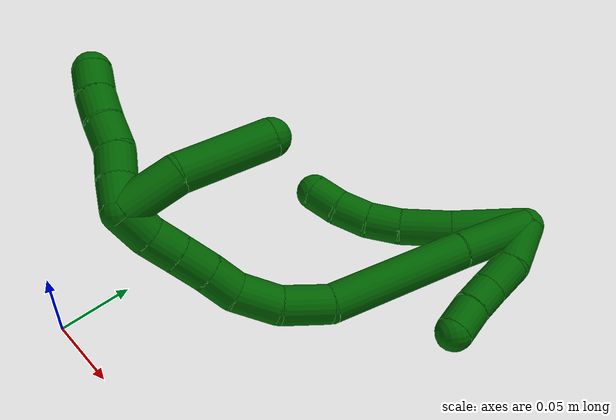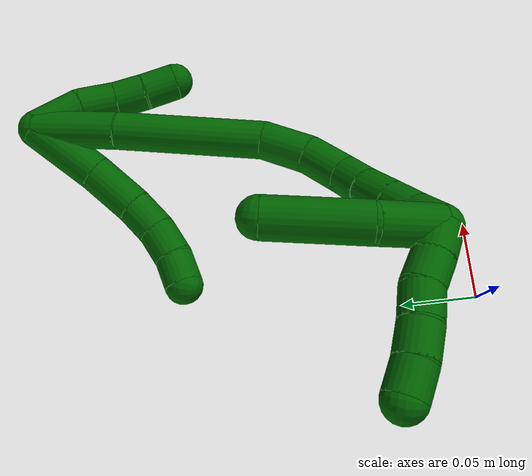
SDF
<sdf version="1.7">
 <world name="default">
  <model name="6">
   <static>0</static>
   <link name="6">
    <collision name="collision-cylinder-e_1_2_8">
     <pose>-0.008685 0.007774 -0.02191 -2.80063 -0.357509 1.61915</pose>
     <geometry><cylinder><radius>0.0125</radius><length>0.049634</length></cylinder></geometry>
     <surface>
      <friction><ode><mu>1.16</mu><mu2>1.16</mu2><slip1>0</slip1><slip2>0</slip2></ode></friction>
      <contact><ode><kp>1e+06</kp><kd>1</kd><max_vel>0</max_vel><min_depth>0.001</min_depth></ode></contact>
     </surface>
    </collision>
    <visual name="visual-cylinder-e_1_2_8">
     <pose>-0.008685 0.007774 -0.02191 -2.80063 -0.357509 1.61915</pose>
     <geometry><cylinder><radius>0.0125</radius><length>0.049634</length></cylinder></geometry>
     <material><ambient>0 0.392157 0.003922 1</ambient></material>
    </visual>
    <collision name="collision-cylinder-e_2_8_9">
     <pose>-0.024811 0.020581 -0.058757 -2.81657 -0.441067 1.87866</pose>
     <geometry><cylinder><radius>0.0125</radius><length>0.034862</length></cylinder></geometry>
     <surface>
      <friction><ode><mu>1.16</mu><mu2>1.16</mu2><slip1>0</slip1><slip2>0</slip2></ode></friction>
      <contact><ode><kp>1e+06</kp><kd>1</kd><max_vel>0</max_vel><min_depth>0.001</min_depth></ode></contact>
     </surface>
    </collision>
    <visual name="visual-cylinder-e_2_8_9">
     <pose>-0.024811 0.020581 -0.058757 -2.81657 -0.441067 1.87866</pose>
     <geometry><cylinder><radius>0.0125</radius><length>0.034862</length></cylinder></geometry>
     <material><ambient>0 0.392157 0.003922 1</ambient></material>
    </visual>
    <collision name="collision-cylinder-e_3_9_10">
     <pose>-0.038524 0.028001 -0.082961 -2.88955 -0.58025 2.33892</pose>
     <geometry><cylinder><radius>0.0125</radius><length>0.022883</length></cylinder></geometry>
     <surface>
      <friction><ode><mu>1.16</mu><mu2>1.16</mu2><slip1>0</slip1><slip2>0</slip2></ode></friction>
      <contact><ode><kp>1e+06</kp><kd>1</kd><max_vel>0</max_vel><min_depth>0.001</min_depth></ode></contact>
     </surface>
    </collision>
    <visual name="visual-cylinder-e_3_9_10">
     <pose>-0.038524 0.028001 -0.082961 -2.88955 -0.58025 2.33892</pose>
     <geometry><cylinder><radius>0.0125</radius><length>0.022883</length></cylinder></geometry>
     <material><ambient>0 0.392157 0.003922 1</ambient></material>
    </visual>
    <collision name="collision-cylinder-e_4_10_11">
     <pose>-0.052683 0.031899 -0.099905 -2.9472 -0.789306 2.68168</pose>
     <geometry><cylinder><radius>0.0125</radius><length>0.02222</length></cylinder></geometry>
     <surface>
      <friction><ode><mu>1.16</mu><mu2>1.16</mu2><slip1>0</slip1><slip2>0</slip2></ode></friction>
      <contact><ode><kp>1e+06</kp><kd>1</kd><max_vel>0</max_vel><min_depth>0.001</min_depth></ode></contact>
     </surface>
    </collision>
    <visual name="visual-cylinder-e_4_10_11">
     <pose>-0.052683 0.031899 -0.099905 -2.9472 -0.789306 2.68168</pose>
     <geometry><cylinder><radius>0.0125</radius><length>0.02222</length></cylinder></geometry>
     <material><ambient>0 0.392157 0.003922 1</ambient></material>
    </visual>
    <collision name="collision-cylinder-e_5_11_6">
     <pose>-0.069045 0.034877 -0.113068 -2.88042 -0.980528 2.65903</pose>
     <geometry><cylinder><radius>0.0125</radius><length>0.020401</length></cylinder></geometry>
     <surface>
      <friction><ode><mu>1.16</mu><mu2>1.16</mu2><slip1>0</slip1><slip2>0</slip2></ode></friction>
      <contact><ode><kp>1e+06</kp><kd>1</kd><max_vel>0</max_vel><min_depth>0.001</min_depth></ode></contact>
     </surface>
    </collision>
    <visual name="visual-cylinder-e_5_11_6">
     <pose>-0.069045 0.034877 -0.113068 -2.88042 -0.980528 2.65903</pose>
     <geometry><cylinder><radius>0.0125</radius><length>0.020401</length></cylinder></geometry>
     <material><ambient>0 0.392157 0.003922 1</ambient></material>
    </visual>
    <collision name="collision-cylinder-e_1_2_12">
     <pose>0.012014 0.000422 -0.011405 -3.1046 0.811027 -3.05547</pose>
     <geometry><cylinder><radius>0.0125</radius><length>0.033142</length></cylinder></geometry>
     <surface>
      <friction><ode><mu>1.16</mu><mu2>1.16</mu2><slip1>0</slip1><slip2>0</slip2></ode></friction>
      <contact><ode><kp>1e+06</kp><kd>1</kd><max_vel>0</max_vel><min_depth>0.001</min_depth></ode></contact>
     </surface>
    </collision>
    <visual name="visual-cylinder-e_1_2_12">
     <pose>0.012014 0.000422 -0.011405 -3.1046 0.811027 -3.05547</pose>
     <geometry><cylinder><radius>0.0125</radius><length>0.033142</length></cylinder></geometry>
     <material><ambient>0 0.392157 0.003922 1</ambient></material>
    </visual>
    <collision name="collision-cylinder-e_2_12_13">
     <pose>0.029585 0.001667 -0.03389 -3.06747 0.463869 -2.83016</pose>
     <geometry><cylinder><radius>0.0125</radius><length>0.024844</length></cylinder></geometry>
     <surface>
      <friction><ode><mu>1.16</mu><mu2>1.16</mu2><slip1>0</slip1><slip2>0</slip2></ode></friction>
      <contact><ode><kp>1e+06</kp><kd>1</kd><max_vel>0</max_vel><min_depth>0.001</min_depth></ode></contact>
     </surface>
    </collision>
    <visual name="visual-cylinder-e_2_12_13">
     <pose>0.029585 0.001667 -0.03389 -3.06747 0.463869 -2.83016</pose>
     <geometry><cylinder><radius>0.0125</radius><length>0.024844</length></cylinder></geometry>
     <material><ambient>0 0.392157 0.003922 1</ambient></material>
    </visual>
    <collision name="collision-cylinder-e_3_13_14">
     <pose>0.039932 0.001898 -0.053921 3.07561 0.490301 2.87929</pose>
     <geometry><cylinder><radius>0.0125</radius><length>0.020338</length></cylinder></geometry>
     <surface>
      <friction><ode><mu>1.16</mu><mu2>1.16</mu2><slip1>0</slip1><slip2>0</slip2></ode></friction>
      <contact><ode><kp>1e+06</kp><kd>1</kd><max_vel>0</max_vel><min_depth>0.001</min_depth></ode></contact>
     </surface>
    </collision>
    <visual name="visual-cylinder-e_3_13_14">
     <pose>0.039932 0.001898 -0.053921 3.07561 0.490301 2.87929</pose>
     <geometry><cylinder><radius>0.0125</radius><length>0.020338</length></cylinder></geometry>
     <material><ambient>0 0.392157 0.003922 1</ambient></material>
    </visual>
    <collision name="collision-cylinder-e_4_14_5">
     <pose>0.050724 0.001126 -0.071893 3.12155 0.587141 3.07532</pose>
     <geometry><cylinder><radius>0.0125</radius><length>0.021676</length></cylinder></geometry>
     <surface>
      <friction><ode><mu>1.16</mu><mu2>1.16</mu2><slip1>0</slip1><slip2>0</slip2></ode></friction>
      <contact><ode><kp>1e+06</kp><kd>1</kd><max_vel>0</max_vel><min_depth>0.001</min_depth></ode></contact>
     </surface>
    </collision>
    <visual name="visual-cylinder-e_4_14_5">
     <pose>0.050724 0.001126 -0.071893 3.12155 0.587141 3.07532</pose>
     <geometry><cylinder><radius>0.0125</radius><length>0.021676</length></cylinder></geometry>
     <material><ambient>0 0.392157 0.003922 1</ambient></material>
    </visual>
    <collision name="collision-cylinder-e_1_2_15">
     <pose>0.003134 -0.001431 -0.02753 3.08968 0.113193 2.28221</pose>
     <geometry><cylinder><radius>0.0125</radius><length>0.05549</length></cylinder></geometry>
     <surface>
      <friction><ode><mu>1.16</mu><mu2>1.16</mu2><slip1>0</slip1><slip2>0</slip2></ode></friction>
      <contact><ode><kp>1e+06</kp><kd>1</kd><max_vel>0</max_vel><min_depth>0.001</min_depth></ode></contact>
     </surface>
    </collision>
    <visual name="visual-cylinder-e_1_2_15">
     <pose>0.003134 -0.001431 -0.02753 3.08968 0.113193 2.28221</pose>
     <geometry><cylinder><radius>0.0125</radius><length>0.05549</length></cylinder></geometry>
     <material><ambient>0 0.392157 0.003922 1</ambient></material>
    </visual>
    <collision name="collision-cylinder-e_2_15_16">
     <pose>0.012125 -0.001526 -0.103379 -3.11398 0.120584 -2.69183</pose>
     <geometry><cylinder><radius>0.0125</radius><length>0.097381</length></cylinder></geometry>
     <surface>
      <friction><ode><mu>1.16</mu><mu2>1.16</mu2><slip1>0</slip1><slip2>0</slip2></ode></friction>
      <contact><ode><kp>1e+06</kp><kd>1</kd><max_vel>0</max_vel><min_depth>0.001</min_depth></ode></contact>
     </surface>
    </collision>
    <visual name="visual-cylinder-e_2_15_16">
     <pose>0.012125 -0.001526 -0.103379 -3.11398 0.120584 -2.69183</pose>
     <geometry><cylinder><radius>0.0125</radius><length>0.097381</length></cylinder></geometry>
     <material><ambient>0 0.392157 0.003922 1</ambient></material>
    </visual>
    <collision name="collision-cylinder-e_3_16_17">
     <pose>0.014435 -0.000911 -0.167539 3.09621 -0.22006 -2.73635</pose>
     <geometry><cylinder><radius>0.0125</radius><length>0.032499</length></cylinder></geometry>
     <surface>
      <friction><ode><mu>1.16</mu><mu2>1.16</mu2><slip1>0</slip1><slip2>0</slip2></ode></friction>
      <contact><ode><kp>1e+06</kp><kd>1</kd><max_vel>0</max_vel><min_depth>0.001</min_depth></ode></contact>
     </surface>
    </collision>
    <visual name="visual-cylinder-e_3_16_17">
     <pose>0.014435 -0.000911 -0.167539 3.09621 -0.22006 -2.73635</pose>
     <geometry><cylinder><radius>0.0125</radius><length>0.032499</length></cylinder></geometry>
     <material><ambient>0 0.392157 0.003922 1</ambient></material>
    </visual>
    <collision name="collision-cylinder-e_4_17_18">
     <pose>0.003713 -0.00388 -0.195785 2.9622 -0.517382 -2.48634</pose>
     <geometry><cylinder><radius>0.0125</radius><length>0.029011</length></cylinder></geometry>
     <surface>
      <friction><ode><mu>1.16</mu><mu2>1.16</mu2><slip1>0</slip1><slip2>0</slip2></ode></friction>
      <contact><ode><kp>1e+06</kp><kd>1</kd><max_vel>0</max_vel><min_depth>0.001</min_depth></ode></contact>
     </surface>
    </collision>
    <visual name="visual-cylinder-e_4_17_18">
     <pose>0.003713 -0.00388 -0.195785 2.9622 -0.517382 -2.48634</pose>
     <geometry><cylinder><radius>0.0125</radius><length>0.029011</length></cylinder></geometry>
     <material><ambient>0 0.392157 0.003922 1</ambient></material>
    </visual>
    <collision name="collision-cylinder-e_5_18_19">
     <pose>-0.009942 -0.010634 -0.215388 2.58249 -0.651886 -1.73339</pose>
     <geometry><cylinder><radius>0.0125</radius><length>0.021363</length></cylinder></geometry>
     <surface>
      <friction><ode><mu>1.16</mu><mu2>1.16</mu2><slip1>0</slip1><slip2>0</slip2></ode></friction>
      <contact><ode><kp>1e+06</kp><kd>1</kd><max_vel>0</max_vel><min_depth>0.001</min_depth></ode></contact>
     </surface>
    </collision>
    <visual name="visual-cylinder-e_5_18_19">
     <pose>-0.009942 -0.010634 -0.215388 2.58249 -0.651886 -1.73339</pose>
     <geometry><cylinder><radius>0.0125</radius><length>0.021363</length></cylinder></geometry>
     <material><ambient>0 0.392157 0.003922 1</ambient></material>
    </visual>
    <collision name="collision-cylinder-e_6_19_20">
     <pose>-0.022559 -0.01983 -0.230484 2.60546 -0.588933 -1.66971</pose>
     <geometry><cylinder><radius>0.0125</radius><length>0.022096</length></cylinder></geometry>
     <surface>
      <friction><ode><mu>1.16</mu><mu2>1.16</mu2><slip1>0</slip1><slip2>0</slip2></ode></friction>
      <contact><ode><kp>1e+06</kp><kd>1</kd><max_vel>0</max_vel><min_depth>0.001</min_depth></ode></contact>
     </surface>
    </collision>
    <visual name="visual-cylinder-e_6_19_20">
     <pose>-0.022559 -0.01983 -0.230484 2.60546 -0.588933 -1.66971</pose>
     <geometry><cylinder><radius>0.0125</radius><length>0.022096</length></cylinder></geometry>
     <material><ambient>0 0.392157 0.003922 1</ambient></material>
    </visual>
    <collision name="collision-cylinder-e_7_20_21">
     <pose>-0.034428 -0.028722 -0.245795 2.62616 -0.592229 -1.71653</pose>
     <geometry><cylinder><radius>0.0125</radius><length>0.020537</length></cylinder></geometry>
     <surface>
      <friction><ode><mu>1.16</mu><mu2>1.16</mu2><slip1>0</slip1><slip2>0</slip2></ode></friction>
      <contact><ode><kp>1e+06</kp><kd>1</kd><max_vel>0</max_vel><min_depth>0.001</min_depth></ode></contact>
     </surface>
    </collision>
    <visual name="visual-cylinder-e_7_20_21">
     <pose>-0.034428 -0.028722 -0.245795 2.62616 -0.592229 -1.71653</pose>
     <geometry><cylinder><radius>0.0125</radius><length>0.020537</length></cylinder></geometry>
     <material><ambient>0 0.392157 0.003922 1</ambient></material>
    </visual>
    <collision name="collision-cylinder-e_8_21_1">
     <pose>-0.046437 -0.039048 -0.259529 2.37189 -0.619428 -1.3373</pose>
     <geometry><cylinder><radius>0.0125</radius><length>0.021622</length></cylinder></geometry>
     <surface>
      <friction><ode><mu>1.16</mu><mu2>1.16</mu2><slip1>0</slip1><slip2>0</slip2></ode></friction>
      <contact><ode><kp>1e+06</kp><kd>1</kd><max_vel>0</max_vel><min_depth>0.001</min_depth></ode></contact>
     </surface>
    </collision>
    <visual name="visual-cylinder-e_8_21_1">
     <pose>-0.046437 -0.039048 -0.259529 2.37189 -0.619428 -1.3373</pose>
     <geometry><cylinder><radius>0.0125</radius><length>0.021622</length></cylinder></geometry>
     <material><ambient>0 0.392157 0.003922 1</ambient></material>
    </visual>
    <collision name="collision-cylinder-e_1_1_22">
     <pose>-0.062618 -0.045304 -0.264478 0.094576 -1.43244 -0.082335</pose>
     <geometry><cylinder><radius>0.0125</radius><length>0.02</length></cylinder></geometry>
     <surface>
      <friction><ode><mu>1.16</mu><mu2>1.16</mu2><slip1>0</slip1><slip2>0</slip2></ode></friction>
      <contact><ode><kp>1e+06</kp><kd>1</kd><max_vel>0</max_vel><min_depth>0.001</min_depth></ode></contact>
     </surface>
    </collision>
    <visual name="visual-cylinder-e_1_1_22">
     <pose>-0.062618 -0.045304 -0.264478 0.094576 -1.43244 -0.082335</pose>
     <geometry><cylinder><radius>0.0125</radius><length>0.02</length></cylinder></geometry>
     <material><ambient>0 0.392157 0.003922 1</ambient></material>
    </visual>
    <collision name="collision-cylinder-e_2_22_23">
     <pose>-0.082287 -0.046123 -0.261065 0.325725 -1.35375 -0.262543</pose>
     <geometry><cylinder><radius>0.0125</radius><length>0.02</length></cylinder></geometry>
     <surface>
      <friction><ode><mu>1.16</mu><mu2>1.16</mu2><slip1>0</slip1><slip2>0</slip2></ode></friction>
      <contact><ode><kp>1e+06</kp><kd>1</kd><max_vel>0</max_vel><min_depth>0.001</min_depth></ode></contact>
     </surface>
    </collision>
    <visual name="visual-cylinder-e_2_22_23">
     <pose>-0.082287 -0.046123 -0.261065 0.325725 -1.35375 -0.262543</pose>
     <geometry><cylinder><radius>0.0125</radius><length>0.02</length></cylinder></geometry>
     <material><ambient>0 0.392157 0.003922 1</ambient></material>
    </visual>
    <collision name="collision-cylinder-e_3_23_24">
     <pose>-0.102019 -0.047237 -0.259728 2.59847 -1.48851 -2.55437</pose>
     <geometry><cylinder><radius>0.0125</radius><length>0.02</length></cylinder></geometry>
     <surface>
      <friction><ode><mu>1.16</mu><mu2>1.16</mu2><slip1>0</slip1><slip2>0</slip2></ode></friction>
      <contact><ode><kp>1e+06</kp><kd>1</kd><max_vel>0</max_vel><min_depth>0.001</min_depth></ode></contact>
     </surface>
    </collision>
    <visual name="visual-cylinder-e_3_23_24">
     <pose>-0.102019 -0.047237 -0.259728 2.59847 -1.48851 -2.55437</pose>
     <geometry><cylinder><radius>0.0125</radius><length>0.02</length></cylinder></geometry>
     <material><ambient>0 0.392157 0.003922 1</ambient></material>
    </visual>
    <collision name="collision-cylinder-e_4_24_25">
     <pose>-0.121954 -0.046903 -0.260241 -1.32444 -1.49249 1.24921</pose>
     <geometry><cylinder><radius>0.0125</radius><length>0.02</length></cylinder></geometry>
     <surface>
      <friction><ode><mu>1.16</mu><mu2>1.16</mu2><slip1>0</slip1><slip2>0</slip2></ode></friction>
      <contact><ode><kp>1e+06</kp><kd>1</kd><max_vel>0</max_vel><min_depth>0.001</min_depth></ode></contact>
     </surface>
    </collision>
    <visual name="visual-cylinder-e_4_24_25">
     <pose>-0.121954 -0.046903 -0.260241 -1.32444 -1.49249 1.24921</pose>
     <geometry><cylinder><radius>0.0125</radius><length>0.02</length></cylinder></geometry>
     <material><ambient>0 0.392157 0.003922 1</ambient></material>
    </visual>
    <collision name="collision-cylinder-e_5_25_4">
     <pose>-0.141765 -0.045046 -0.258653 -0.666202 -1.39213 0.562868</pose>
     <geometry><cylinder><radius>0.0125</radius><length>0.02</length></cylinder></geometry>
     <surface>
      <friction><ode><mu>1.16</mu><mu2>1.16</mu2><slip1>0</slip1><slip2>0</slip2></ode></friction>
      <contact><ode><kp>1e+06</kp><kd>1</kd><max_vel>0</max_vel><min_depth>0.001</min_depth></ode></contact>
     </surface>
    </collision>
    <visual name="visual-cylinder-e_5_25_4">
     <pose>-0.141765 -0.045046 -0.258653 -0.666202 -1.39213 0.562868</pose>
     <geometry><cylinder><radius>0.0125</radius><length>0.02</length></cylinder></geometry>
     <material><ambient>0 0.392157 0.003922 1</ambient></material>
    </visual>
    <collision name="collision-cylinder-e_1_1_26">
     <pose>-0.058128 -0.050235 -0.247947 0.275487 -0.283223 -0.03952</pose>
     <geometry><cylinder><radius>0.0125</radius><length>0.038755</length></cylinder></geometry>
     <surface>
      <friction><ode><mu>1.16</mu><mu2>1.16</mu2><slip1>0</slip1><slip2>0</slip2></ode></friction>
      <contact><ode><kp>1e+06</kp><kd>1</kd><max_vel>0</max_vel><min_depth>0.001</min_depth></ode></contact>
     </surface>
    </collision>
    <visual name="visual-cylinder-e_1_1_26">
     <pose>-0.058128 -0.050235 -0.247947 0.275487 -0.283223 -0.03952</pose>
     <geometry><cylinder><radius>0.0125</radius><length>0.038755</length></cylinder></geometry>
     <material><ambient>0 0.392157 0.003922 1</ambient></material>
    </visual>
    <collision name="collision-cylinder-e_2_26_3">
     <pose>-0.068382 -0.056641 -0.199835 0.044503 -0.158662 -0.003538</pose>
     <geometry><cylinder><radius>0.0125</radius><length>0.061245</length></cylinder></geometry>
     <surface>
      <friction><ode><mu>1.16</mu><mu2>1.16</mu2><slip1>0</slip1><slip2>0</slip2></ode></friction>
      <contact><ode><kp>1e+06</kp><kd>1</kd><max_vel>0</max_vel><min_depth>0.001</min_depth></ode></contact>
     </surface>
    </collision>
    <visual name="visual-cylinder-e_2_26_3">
     <pose>-0.068382 -0.056641 -0.199835 0.044503 -0.158662 -0.003538</pose>
     <geometry><cylinder><radius>0.0125</radius><length>0.061245</length></cylinder></geometry>
     <material><ambient>0 0.392157 0.003922 1</ambient></material>
    </visual>
    <collision name="collision-sphere-3">
     <pose>-0.07322 -0.057986 -0.169627 0 -0 0</pose>
     <geometry><sphere><radius>0.0125</radius></sphere></geometry>
     <surface>
      <friction><ode><mu>1.16</mu><mu2>1.16</mu2><slip1>0</slip1><slip2>0</slip2></ode></friction>
      <contact><ode><kp>1e+06</kp><kd>1</kd><max_vel>0</max_vel><min_depth>0.001</min_depth></ode></contact>
     </surface>
    </collision>
    <visual name="visual-sphere-3">
     <pose>-0.07322 -0.057986 -0.169627 0 -0 0</pose>
     <geometry><sphere><radius>0.0125</radius></sphere></geometry>
     <material><ambient>0 0.392157 0.003922 1</ambient></material>
    </visual>
    <collision name="collision-sphere-26">
     <pose>-0.063543 -0.055295 -0.230043 0 -0 0</pose>
     <geometry><sphere><radius>0.0125</radius></sphere></geometry>
     <surface>
      <friction><ode><mu>1.16</mu><mu2>1.16</mu2><slip1>0</slip1><slip2>0</slip2></ode></friction>
      <contact><ode><kp>1e+06</kp><kd>1</kd><max_vel>0</max_vel><min_depth>0.001</min_depth></ode></contact>
     </surface>
    </collision>
    <visual name="visual-sphere-26">
     <pose>-0.063543 -0.055295 -0.230043 0 -0 0</pose>
     <geometry><sphere><radius>0.0125</radius></sphere></geometry>
     <material><ambient>0 0.392157 0.003922 1</ambient></material>
    </visual>
    <collision name="collision-sphere-4">
     <pose>-0.151605 -0.043948 -0.257256 0 -0 0</pose>
     <geometry><sphere><radius>0.0125</radius></sphere></geometry>
     <surface>
      <friction><ode><mu>1.16</mu><mu2>1.16</mu2><slip1>0</slip1><slip2>0</slip2></ode></friction>
      <contact><ode><kp>1e+06</kp><kd>1</kd><max_vel>0</max_vel><min_depth>0.001</min_depth></ode></contact>
     </surface>
    </collision>
    <visual name="visual-sphere-4">
     <pose>-0.151605 -0.043948 -0.257256 0 -0 0</pose>
     <geometry><sphere><radius>0.0125</radius></sphere></geometry>
     <material><ambient>0 0.392157 0.003922 1</ambient></material>
    </visual>
    <collision name="collision-sphere-25">
     <pose>-0.131924 -0.046145 -0.26005 0 -0 0</pose>
     <geometry><sphere><radius>0.0125</radius></sphere></geometry>
     <surface>
      <friction><ode><mu>1.16</mu><mu2>1.16</mu2><slip1>0</slip1><slip2>0</slip2></ode></friction>
      <contact><ode><kp>1e+06</kp><kd>1</kd><max_vel>0</max_vel><min_depth>0.001</min_depth></ode></contact>
     </surface>
    </collision>
    <visual name="visual-sphere-25">
     <pose>-0.131924 -0.046145 -0.26005 0 -0 0</pose>
     <geometry><sphere><radius>0.0125</radius></sphere></geometry>
     <material><ambient>0 0.392157 0.003922 1</ambient></material>
    </visual>
    <collision name="collision-sphere-24">
     <pose>-0.111985 -0.047662 -0.260432 0 -0 0</pose>
     <geometry><sphere><radius>0.0125</radius></sphere></geometry>
     <surface>
      <friction><ode><mu>1.16</mu><mu2>1.16</mu2><slip1>0</slip1><slip2>0</slip2></ode></friction>
      <contact><ode><kp>1e+06</kp><kd>1</kd><max_vel>0</max_vel><min_depth>0.001</min_depth></ode></contact>
     </surface>
    </collision>
    <visual name="visual-sphere-24">
     <pose>-0.111985 -0.047662 -0.260432 0 -0 0</pose>
     <geometry><sphere><radius>0.0125</radius></sphere></geometry>
     <material><ambient>0 0.392157 0.003922 1</ambient></material>
    </visual>
    <collision name="collision-sphere-23">
     <pose>-0.092053 -0.046812 -0.259024 0 -0 0</pose>
     <geometry><sphere><radius>0.0125</radius></sphere></geometry>
     <surface>
      <friction><ode><mu>1.16</mu><mu2>1.16</mu2><slip1>0</slip1><slip2>0</slip2></ode></friction>
      <contact><ode><kp>1e+06</kp><kd>1</kd><max_vel>0</max_vel><min_depth>0.001</min_depth></ode></contact>
     </surface>
    </collision>
    <visual name="visual-sphere-23">
     <pose>-0.092053 -0.046812 -0.259024 0 -0 0</pose>
     <geometry><sphere><radius>0.0125</radius></sphere></geometry>
     <material><ambient>0 0.392157 0.003922 1</ambient></material>
    </visual>
    <collision name="collision-sphere-22">
     <pose>-0.072522 -0.045434 -0.263105 0 -0 0</pose>
     <geometry><sphere><radius>0.0125</radius></sphere></geometry>
     <surface>
      <friction><ode><mu>1.16</mu><mu2>1.16</mu2><slip1>0</slip1><slip2>0</slip2></ode></friction>
      <contact><ode><kp>1e+06</kp><kd>1</kd><max_vel>0</max_vel><min_depth>0.001</min_depth></ode></contact>
     </surface>
    </collision>
    <visual name="visual-sphere-22">
     <pose>-0.072522 -0.045434 -0.263105 0 -0 0</pose>
     <geometry><sphere><radius>0.0125</radius></sphere></geometry>
     <material><ambient>0 0.392157 0.003922 1</ambient></material>
    </visual>
    <collision name="collision-sphere-1">
     <pose>-0.052713 -0.045174 -0.265851 0 -0 0</pose>
     <geometry><sphere><radius>0.0125</radius></sphere></geometry>
     <surface>
      <friction><ode><mu>1.16</mu><mu2>1.16</mu2><slip1>0</slip1><slip2>0</slip2></ode></friction>
      <contact><ode><kp>1e+06</kp><kd>1</kd><max_vel>0</max_vel><min_depth>0.001</min_depth></ode></contact>
     </surface>
    </collision>
    <visual name="visual-sphere-1">
     <pose>-0.052713 -0.045174 -0.265851 0 -0 0</pose>
     <geometry><sphere><radius>0.0125</radius></sphere></geometry>
     <material><ambient>0 0.392157 0.003922 1</ambient></material>
    </visual>
    <collision name="collision-sphere-21">
     <pose>-0.04016 -0.032922 -0.253208 0 -0 0</pose>
     <geometry><sphere><radius>0.0125</radius></sphere></geometry>
     <surface>
      <friction><ode><mu>1.16</mu><mu2>1.16</mu2><slip1>0</slip1><slip2>0</slip2></ode></friction>
      <contact><ode><kp>1e+06</kp><kd>1</kd><max_vel>0</max_vel><min_depth>0.001</min_depth></ode></contact>
     </surface>
    </collision>
    <visual name="visual-sphere-21">
     <pose>-0.04016 -0.032922 -0.253208 0 -0 0</pose>
     <geometry><sphere><radius>0.0125</radius></sphere></geometry>
     <material><ambient>0 0.392157 0.003922 1</ambient></material>
    </visual>
    <collision name="collision-sphere-6">
     <pose>-0.077519 0.036343 -0.118553 0 -0 0</pose>
     <geometry><sphere><radius>0.0125</radius></sphere></geometry>
     <surface>
      <friction><ode><mu>1.16</mu><mu2>1.16</mu2><slip1>0</slip1><slip2>0</slip2></ode></friction>
      <contact><ode><kp>1e+06</kp><kd>1</kd><max_vel>0</max_vel><min_depth>0.001</min_depth></ode></contact>
     </surface>
    </collision>
    <visual name="visual-sphere-6">
     <pose>-0.077519 0.036343 -0.118553 0 -0 0</pose>
     <geometry><sphere><radius>0.0125</radius></sphere></geometry>
     <material><ambient>0 0.392157 0.003922 1</ambient></material>
    </visual>
    <collision name="collision-sphere-11">
     <pose>-0.06057 0.033411 -0.107583 0 -0 0</pose>
     <geometry><sphere><radius>0.0125</radius></sphere></geometry>
     <surface>
      <friction><ode><mu>1.16</mu><mu2>1.16</mu2><slip1>0</slip1><slip2>0</slip2></ode></friction>
      <contact><ode><kp>1e+06</kp><kd>1</kd><max_vel>0</max_vel><min_depth>0.001</min_depth></ode></contact>
     </surface>
    </collision>
    <visual name="visual-sphere-11">
     <pose>-0.06057 0.033411 -0.107583 0 -0 0</pose>
     <geometry><sphere><radius>0.0125</radius></sphere></geometry>
     <material><ambient>0 0.392157 0.003922 1</ambient></material>
    </visual>
    <collision name="collision-sphere-10">
     <pose>-0.044797 0.030387 -0.092227 0 -0 0</pose>
     <geometry><sphere><radius>0.0125</radius></sphere></geometry>
     <surface>
      <friction><ode><mu>1.16</mu><mu2>1.16</mu2><slip1>0</slip1><slip2>0</slip2></ode></friction>
      <contact><ode><kp>1e+06</kp><kd>1</kd><max_vel>0</max_vel><min_depth>0.001</min_depth></ode></contact>
     </surface>
    </collision>
    <visual name="visual-sphere-10">
     <pose>-0.044797 0.030387 -0.092227 0 -0 0</pose>
     <geometry><sphere><radius>0.0125</radius></sphere></geometry>
     <material><ambient>0 0.392157 0.003922 1</ambient></material>
    </visual>
    <collision name="collision-sphere-9">
     <pose>-0.032252 0.025615 -0.073694 0 -0 0</pose>
     <geometry><sphere><radius>0.0125</radius></sphere></geometry>
     <surface>
      <friction><ode><mu>1.16</mu><mu2>1.16</mu2><slip1>0</slip1><slip2>0</slip2></ode></friction>
      <contact><ode><kp>1e+06</kp><kd>1</kd><max_vel>0</max_vel><min_depth>0.001</min_depth></ode></contact>
     </surface>
    </collision>
    <visual name="visual-sphere-9">
     <pose>-0.032252 0.025615 -0.073694 0 -0 0</pose>
     <geometry><sphere><radius>0.0125</radius></sphere></geometry>
     <material><ambient>0 0.392157 0.003922 1</ambient></material>
    </visual>
    <collision name="collision-sphere-2">
     <geometry><sphere><radius>0.0125</radius></sphere></geometry>
     <surface>
      <friction><ode><mu>1.16</mu><mu2>1.16</mu2><slip1>0</slip1><slip2>0</slip2></ode></friction>
      <contact><ode><kp>1e+06</kp><kd>1</kd><max_vel>0</max_vel><min_depth>0.001</min_depth></ode></contact>
     </surface>
    </collision>
    <visual name="visual-sphere-2">
     <geometry><sphere><radius>0.0125</radius></sphere></geometry>
     <material><ambient>0 0.392157 0.003922 1</ambient></material>
    </visual>
    <collision name="collision-sphere-19">
     <pose>-0.016422 -0.015137 -0.222587 0 -0 0</pose>
     <geometry><sphere><radius>0.0125</radius></sphere></geometry>
     <surface>
      <friction><ode><mu>1.16</mu><mu2>1.16</mu2><slip1>0</slip1><slip2>0</slip2></ode></friction>
      <contact><ode><kp>1e+06</kp><kd>1</kd><max_vel>0</max_vel><min_depth>0.001</min_depth></ode></contact>
     </surface>
    </collision>
    <visual name="visual-sphere-19">
     <pose>-0.016422 -0.015137 -0.222587 0 -0 0</pose>
     <geometry><sphere><radius>0.0125</radius></sphere></geometry>
     <material><ambient>0 0.392157 0.003922 1</ambient></material>
    </visual>
    <collision name="collision-sphere-8">
     <pose>-0.017369 0.015548 -0.043819 0 -0 0</pose>
     <geometry><sphere><radius>0.0125</radius></sphere></geometry>
     <surface>
      <friction><ode><mu>1.16</mu><mu2>1.16</mu2><slip1>0</slip1><slip2>0</slip2></ode></friction>
      <contact><ode><kp>1e+06</kp><kd>1</kd><max_vel>0</max_vel><min_depth>0.001</min_depth></ode></contact>
     </surface>
    </collision>
    <visual name="visual-sphere-8">
     <pose>-0.017369 0.015548 -0.043819 0 -0 0</pose>
     <geometry><sphere><radius>0.0125</radius></sphere></geometry>
     <material><ambient>0 0.392157 0.003922 1</ambient></material>
    </visual>
    <collision name="collision-sphere-12">
     <pose>0.024028 0.000844 -0.022811 0 -0 0</pose>
     <geometry><sphere><radius>0.0125</radius></sphere></geometry>
     <surface>
      <friction><ode><mu>1.16</mu><mu2>1.16</mu2><slip1>0</slip1><slip2>0</slip2></ode></friction>
      <contact><ode><kp>1e+06</kp><kd>1</kd><max_vel>0</max_vel><min_depth>0.001</min_depth></ode></contact>
     </surface>
    </collision>
    <visual name="visual-sphere-12">
     <pose>0.024028 0.000844 -0.022811 0 -0 0</pose>
     <geometry><sphere><radius>0.0125</radius></sphere></geometry>
     <material><ambient>0 0.392157 0.003922 1</ambient></material>
    </visual>
    <collision name="collision-sphere-13">
     <pose>0.035143 0.00249 -0.044969 0 -0 0</pose>
     <geometry><sphere><radius>0.0125</radius></sphere></geometry>
     <surface>
      <friction><ode><mu>1.16</mu><mu2>1.16</mu2><slip1>0</slip1><slip2>0</slip2></ode></friction>
      <contact><ode><kp>1e+06</kp><kd>1</kd><max_vel>0</max_vel><min_depth>0.001</min_depth></ode></contact>
     </surface>
    </collision>
    <visual name="visual-sphere-13">
     <pose>0.035143 0.00249 -0.044969 0 -0 0</pose>
     <geometry><sphere><radius>0.0125</radius></sphere></geometry>
     <material><ambient>0 0.392157 0.003922 1</ambient></material>
    </visual>
    <collision name="collision-sphere-14">
     <pose>0.04472 0.001307 -0.062872 0 -0 0</pose>
     <geometry><sphere><radius>0.0125</radius></sphere></geometry>
     <surface>
      <friction><ode><mu>1.16</mu><mu2>1.16</mu2><slip1>0</slip1><slip2>0</slip2></ode></friction>
      <contact><ode><kp>1e+06</kp><kd>1</kd><max_vel>0</max_vel><min_depth>0.001</min_depth></ode></contact>
     </surface>
    </collision>
    <visual name="visual-sphere-14">
     <pose>0.04472 0.001307 -0.062872 0 -0 0</pose>
     <geometry><sphere><radius>0.0125</radius></sphere></geometry>
     <material><ambient>0 0.392157 0.003922 1</ambient></material>
    </visual>
    <collision name="collision-sphere-5">
     <pose>0.056728 0.000945 -0.080914 0 -0 0</pose>
     <geometry><sphere><radius>0.0125</radius></sphere></geometry>
     <surface>
      <friction><ode><mu>1.16</mu><mu2>1.16</mu2><slip1>0</slip1><slip2>0</slip2></ode></friction>
      <contact><ode><kp>1e+06</kp><kd>1</kd><max_vel>0</max_vel><min_depth>0.001</min_depth></ode></contact>
     </surface>
    </collision>
    <visual name="visual-sphere-5">
     <pose>0.056728 0.000945 -0.080914 0 -0 0</pose>
     <geometry><sphere><radius>0.0125</radius></sphere></geometry>
     <material><ambient>0 0.392157 0.003922 1</ambient></material>
    </visual>
    <collision name="collision-sphere-15">
     <pose>0.006268 -0.002861 -0.055061 0 -0 0</pose>
     <geometry><sphere><radius>0.0125</radius></sphere></geometry>
     <surface>
      <friction><ode><mu>1.16</mu><mu2>1.16</mu2><slip1>0</slip1><slip2>0</slip2></ode></friction>
      <contact><ode><kp>1e+06</kp><kd>1</kd><max_vel>0</max_vel><min_depth>0.001</min_depth></ode></contact>
     </surface>
    </collision>
    <visual name="visual-sphere-15">
     <pose>0.006268 -0.002861 -0.055061 0 -0 0</pose>
     <geometry><sphere><radius>0.0125</radius></sphere></geometry>
     <material><ambient>0 0.392157 0.003922 1</ambient></material>
    </visual>
    <collision name="collision-sphere-16">
     <pose>0.017982 -0.000192 -0.151698 0 -0 0</pose>
     <geometry><sphere><radius>0.0125</radius></sphere></geometry>
     <surface>
      <friction><ode><mu>1.16</mu><mu2>1.16</mu2><slip1>0</slip1><slip2>0</slip2></ode></friction>
      <contact><ode><kp>1e+06</kp><kd>1</kd><max_vel>0</max_vel><min_depth>0.001</min_depth></ode></contact>
     </surface>
    </collision>
    <visual name="visual-sphere-16">
     <pose>0.017982 -0.000192 -0.151698 0 -0 0</pose>
     <geometry><sphere><radius>0.0125</radius></sphere></geometry>
     <material><ambient>0 0.392157 0.003922 1</ambient></material>
    </visual>
    <collision name="collision-sphere-17">
     <pose>0.010888 -0.001631 -0.183381 0 -0 0</pose>
     <geometry><sphere><radius>0.0125</radius></sphere></geometry>
     <surface>
      <friction><ode><mu>1.16</mu><mu2>1.16</mu2><slip1>0</slip1><slip2>0</slip2></ode></friction>
      <contact><ode><kp>1e+06</kp><kd>1</kd><max_vel>0</max_vel><min_depth>0.001</min_depth></ode></contact>
     </surface>
    </collision>
    <visual name="visual-sphere-17">
     <pose>0.010888 -0.001631 -0.183381 0 -0 0</pose>
     <geometry><sphere><radius>0.0125</radius></sphere></geometry>
     <material><ambient>0 0.392157 0.003922 1</ambient></material>
    </visual>
    <collision name="collision-sphere-18">
     <pose>-0.003461 -0.00613 -0.20819 0 -0 0</pose>
     <geometry><sphere><radius>0.0125</radius></sphere></geometry>
     <surface>
      <friction><ode><mu>1.16</mu><mu2>1.16</mu2><slip1>0</slip1><slip2>0</slip2></ode></friction>
      <contact><ode><kp>1e+06</kp><kd>1</kd><max_vel>0</max_vel><min_depth>0.001</min_depth></ode></contact>
     </surface>
    </collision>
    <visual name="visual-sphere-18">
     <pose>-0.003461 -0.00613 -0.20819 0 -0 0</pose>
     <geometry><sphere><radius>0.0125</radius></sphere></geometry>
     <material><ambient>0 0.392157 0.003922 1</ambient></material>
    </visual>
    <collision name="collision-sphere-20">
     <pose>-0.028696 -0.024523 -0.238382 0 -0 0</pose>
     <geometry><sphere><radius>0.0125</radius></sphere></geometry>
     <surface>
      <friction><ode><mu>1.16</mu><mu2>1.16</mu2><slip1>0</slip1><slip2>0</slip2></ode></friction>
      <contact><ode><kp>1e+06</kp><kd>1</kd><max_vel>0</max_vel><min_depth>0.001</min_depth></ode></contact>
     </surface>
    </collision>
    <visual name="visual-sphere-20">
     <pose>-0.028696 -0.024523 -0.238382 0 -0 0</pose>
     <geometry><sphere><radius>0.0125</radius></sphere></geometry>
     <material><ambient>0 0.392157 0.003922 1</ambient></material>
    </visual>
    <inertial>
     <pose>-0.025141 -0.012287 -0.139254 0 -0 0</pose>
     <mass>0.75</mass>
     <inertia>
      <ixx>-0.000103</ixx>
      <ixy>0</ixy>
      <ixz>0</ixz>
      <iyy>0.00013</iyy>
      <iyz>0</iyz>
      <izz>-1.8e-05</izz>
     </inertia>
    </inertial>
   </link>
   <pose>0.143143 0.27878 0.019658 -1.68444 0.280246 -0.336942</pose>
  </model>
 </world>
</sdf>
